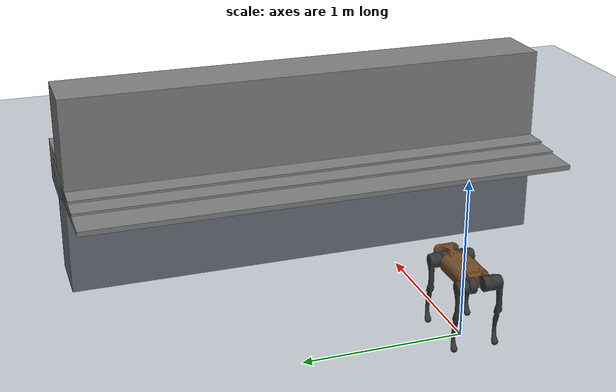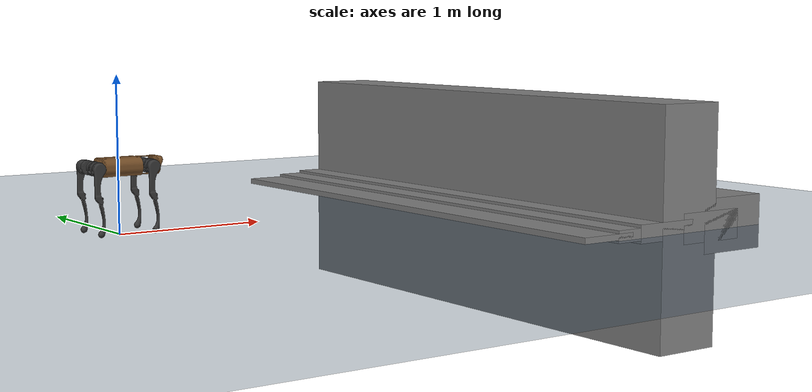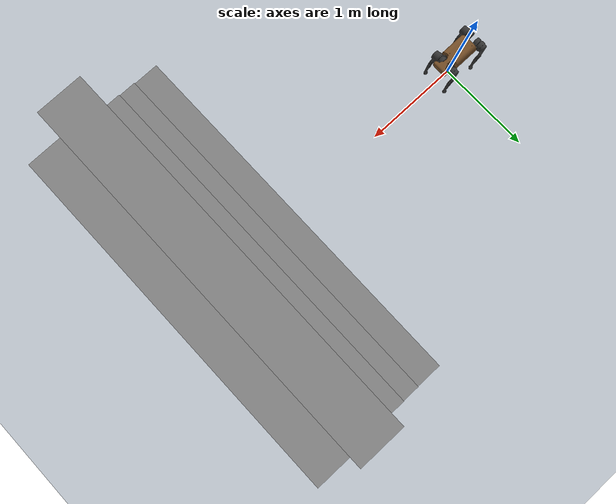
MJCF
<mujoco model="a1 scene">
  <include file="a1.xml"/>

  <statistic center="0 0 0.1" extent="0.8"/>

  <visual>
    <headlight diffuse="0.6 0.6 0.6" ambient="0.3 0.3 0.3" specular="0 0 0"/>
    <rgba haze="0.15 0.25 0.35 1"/>
  </visual>

  <asset>
    <texture type="skybox" builtin="gradient" rgb1="0.3 0.5 0.7" rgb2="0 0 0" width="512" height="3072"/>
    <texture type="2d" name="groundplane" builtin="checker" mark="edge" rgb1="0.2 0.3 0.4" rgb2="0.1 0.2 0.3"
      markrgb="0.8 0.8 0.8" width="300" height="300"/>
    <material name="groundplane" texture="groundplane" texuniform="true" texrepeat="5 5" reflectance="0.2"/>
  </asset>

  <worldbody>
    <light pos="0 0 1.5" dir="0 0 -1" directional="true"/>
    <geom name="floor" size="0 0 0.05" type="plane" material="groundplane"/>

    <geom pos="2.3 0 0.02" type="box"  size="0.2 2 0.02" quat="1.0 0 0 0"/>
    <geom pos="2.6 0 0.02" type="box"  size="0.22 2 0.04" quat="1.0 0 0 0"/>
    <geom pos="2.8 0 0.02" type="box"  size="0.23 2 0.06" quat="1.0 0 0 0"/>
    <geom pos="3 0 0.02" type="box"  size="0.24 2 0.8" quat="1.0 0 0 0"/>
    <geom pos="3.2 0 0.02" type="box"  size="0.25 2 0.10" quat="1.0 0 0 0"/>
    <geom pos="3.4 0 0.02" type="box"  size="0.26 2 0.18" quat="1.0 0 0 0"/>
  </worldbody>
</mujoco>

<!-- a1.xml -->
<mujoco model="a1">
  <compiler angle="radian" meshdir="assets" texturedir="assets" autolimits="true"/>

  <option cone="elliptic" impratio="100"/>

  <default>
    <default class="a1">
      <geom friction="0.6" margin="0.001"/>
      <joint axis="0 1 0" damping="2" armature="0.01" frictionloss="0.2"/>
    <motor ctrlrange="-23.7 23.7"/>
      <default class="abduction">
        <joint axis="1 0 0" damping="1" range="-0.802851 0.802851"/>
        <position ctrlrange="-0.802851 0.802851"/>
      </default>
      <default class="hip">
        <joint range="-1.0472 4.18879"/>
        <position ctrlrange="-1.0472 4.18879"/>
      </default>
      <default class="knee">
        <joint range="-2.69653 -0.916298"/>
        <motor ctrlrange="-45.43 45.43"/>
      </default>
      <default class="visual">
        <geom type="mesh" contype="0" conaffinity="0" group="2" material="dark"/>
      </default>
      <default class="collision">
        <geom group="3" type="capsule"/>
        <default class="hip_left">
          <geom size="0.04 0.04" quat="1 1 0 0" type="cylinder" pos="0 0.055 0"/>
        </default>
        <default class="hip_right">
          <geom size="0.04 0.04" quat="1 1 0 0" type="cylinder" pos="0 -0.055 0"/>
        </default>
        <default class="thigh1">
          <geom size="0.015" fromto="-0.02 0 0 -0.02 0 -0.16"/>
        </default>
        <default class="thigh2">
          <geom size="0.015" fromto="0 0 0 -0.02 0 -0.1"/>
        </default>
        <default class="thigh3">
          <geom size="0.015" fromto="-0.02 0 -0.16 0 0 -0.2"/>
        </default>
        <default class="calf1">
          <geom size="0.01" fromto="0 0 0 0.02 0 -0.13"/>
        </default>
        <default class="calf2">
          <geom size="0.01" fromto="0.02 0 -0.13 0 0 -0.2"/>
        </default>
        <default class="foot">
          <geom type="sphere" size="0.02" pos="0 0 -0.2" priority="1" solimp="0.015 1 0.02" condim="6"
            friction="0.8 0.02 0.01"/>
        </default>
      </default>
    </default>
  </default>

  <asset>
    <material name="dark" specular="0" shininess="0.25" rgba="0.2 0.2 0.2 1"/>
    <texture type="2d" name="trunk_A1" file="trunk_A1.png"/>
    <material name="carbonfibre" texture="trunk_A1" specular="0" shininess="0.25"/>

    <mesh class="a1" file="calf.obj"/>
    <mesh class="a1" file="hip.obj"/>
    <mesh class="a1" file="thigh.obj"/>
    <mesh class="a1" file="thigh_mirror.obj"/>
    <mesh class="a1" file="trunk.obj"/>
  </asset>

  <worldbody>
    <light name="spotlight" mode="targetbodycom" target="trunk" pos="0 -1 2"/>
    <body name="trunk" pos="0 0 0.43" childclass="a1">
      <freejoint/>
      <inertial mass="4.713" pos="0 0.0041 -0.0005"
        fullinertia="0.0158533 0.0377999 0.0456542 -3.66e-05 -6.11e-05 -2.75e-05"/>
      <geom class="visual" mesh="trunk" material="carbonfibre"/>
      <geom class="collision" size="0.125 0.04 0.057" type="box"/>
      <geom class="collision" quat="1 0 1 0" pos="0 -0.04 0" size="0.058 0.125" type="cylinder"/>
      <geom class="collision" quat="1 0 1 0" pos="0 +0.04 0" size="0.058 0.125" type="cylinder"/>
      <geom class="collision" pos="0.25 0 0" size="0.005 0.06 0.05" type="box"/>
      <geom class="collision" pos="0.25 0.06 -0.01" size="0.009 0.035"/>
      <geom class="collision" pos="0.25 -0.06 -0.01" size="0.009 0.035"/>
      <geom class="collision" pos="0.25 0 -0.05" size="0.005 0.06" quat="1 1 0 0"/>
      <geom class="collision" pos="0.255 0 0.0355" size="0.021 0.052" quat="1 1 0 0"/>
      <site name='imu' size='0.01' pos='0.0 0 0.0'/>
      <body name="FL_hip" pos="0.183 0.047 0">
        <inertial mass="0.696" pos="-0.003311 0.000635 3.1e-05" quat="0.494499 0.491507 0.506268 0.507528"
          diaginertia="0.000807752 0.00055293 0.000468983"/>
        <joint class="abduction" name="FL_hip_joint"/>
        <geom class="visual" mesh="hip"/>
        <geom class="hip_left"/>
        <geom class="collision" size="0.04 0.04" pos="0 0.055 0" quat="1 1 0 0" type="cylinder"/>
        <body name="FL_thigh" pos="0 0.08505 0">
          <inertial mass="1.013" pos="-0.003237 -0.022327 -0.027326" quat="0.999125 0.00256393 -0.0409531 0.00806091"
            diaginertia="0.00555739 0.00513936 0.00133944"/>
          <joint class="hip" name="FL_thigh_joint"/>
          <geom class="visual" mesh="thigh"/>
          <geom class="thigh1"/>
          <geom class="thigh2"/>
          <geom class="thigh3"/>
          <body name="FL_calf" pos="0 0 -0.2">
            <inertial mass="0.226" pos="0.00472659 0 -0.131975" quat="0.706886 0.017653 0.017653 0.706886"
              diaginertia="0.00340344 0.00339393 3.54834e-05"/>
            <joint class="knee" name="FL_calf_joint"/>
            <geom class="visual" mesh="calf"/>
            <geom class="calf1"/>
            <geom class="calf2"/>
            <geom class="foot"/>
          </body>
        </body>
      </body>
      <body name="FR_hip" pos="0.183 -0.047 0">
        <inertial mass="0.696" pos="-0.003311 -0.000635 3.1e-05" quat="0.507528 0.506268 0.491507 0.494499"
          diaginertia="0.000807752 0.00055293 0.000468983"/>
        <joint class="abduction" name="FR_hip_joint"/>
        <geom class="visual" mesh="hip" quat="0 1 0 0"/>
        <geom class="hip_right"/>
        <body name="FR_thigh" pos="0 -0.08505 0">
          <inertial mass="1.013" pos="-0.003237 0.022327 -0.027326" quat="0.999125 -0.00256393 -0.0409531 -0.00806091"
            diaginertia="0.00555739 0.00513936 0.00133944"/>
          <joint class="hip" name="FR_thigh_joint"/>
          <geom class="visual" mesh="thigh_mirror"/>
          <geom class="thigh1"/>
          <geom class="thigh2"/>
          <geom class="thigh3"/>
          <body name="FR_calf" pos="0 0 -0.2">
            <inertial mass="0.226" pos="0.00472659 0 -0.131975" quat="0.706886 0.017653 0.017653 0.706886"
              diaginertia="0.00340344 0.00339393 3.54834e-05"/>
            <joint class="knee" name="FR_calf_joint"/>
            <geom class="visual" mesh="calf"/>
            <geom class="calf1"/>
            <geom class="calf2"/>
            <geom class="foot"/>
          </body>
        </body>
      </body>
      <body name="RL_hip" pos="-0.183 0.047 0">
        <inertial mass="0.696" pos="0.003311 0.000635 3.1e-05" quat="0.506268 0.507528 0.494499 0.491507"
          diaginertia="0.000807752 0.00055293 0.000468983"/>
        <joint class="abduction" name="RL_hip_joint"/>
        <geom class="visual" quat="0 0 1 0" mesh="hip"/>
        <geom class="hip_left"/>
        <body name="RL_thigh" pos="0 0.08505 0">
          <inertial mass="1.013" pos="-0.003237 -0.022327 -0.027326" quat="0.999125 0.00256393 -0.0409531 0.00806091"
            diaginertia="0.00555739 0.00513936 0.00133944"/>
          <joint class="hip" name="RL_thigh_joint"/>
          <geom class="visual" mesh="thigh"/>
          <geom class="thigh1"/>
          <geom class="thigh2"/>
          <geom class="thigh3"/>
          <body name="RL_calf" pos="0 0 -0.2">
            <inertial mass="0.226" pos="0.00472659 0 -0.131975" quat="0.706886 0.017653 0.017653 0.706886"
              diaginertia="0.00340344 0.00339393 3.54834e-05"/>
            <joint class="knee" name="RL_calf_joint"/>
            <geom class="visual" mesh="calf"/>
            <geom class="calf1"/>
            <geom class="calf2"/>
            <geom class="foot"/>
          </body>
        </body>
      </body>
            <body name="RR_hip" pos="-0.183 -0.047 0">
        <inertial mass="0.696" pos="0.003311 -0.000635 3.1e-05" quat="0.491507 0.494499 0.507528 0.506268"
          diaginertia="0.000807752 0.00055293 0.000468983"/>
        <joint class="abduction" name="RR_hip_joint"/>
        <geom class="visual" quat="0 0 0 -1" mesh="hip"/>
        <geom class="hip_right"/>
        <body name="RR_thigh" pos="0 -0.08505 0">
          <inertial mass="1.013" pos="-0.003237 0.022327 -0.027326" quat="0.999125 -0.00256393 -0.0409531 -0.00806091"
            diaginertia="0.00555739 0.00513936 0.00133944"/>
          <joint class="hip" name="RR_thigh_joint"/>
          <geom class="visual" mesh="thigh_mirror"/>
          <geom class="thigh1"/>
          <geom class="thigh2"/>
          <geom class="thigh3"/>
          <body name="RR_calf" pos="0 0 -0.2">
            <inertial mass="0.226" pos="0.00472659 0 -0.131975" quat="0.706886 0.017653 0.017653 0.706886"
              diaginertia="0.00340344 0.00339393 3.54834e-05"/>
            <joint class="knee" name="RR_calf_joint"/>
            <geom class="visual" mesh="calf"/>
            <geom class="calf1"/>
            <geom class="calf2"/>
            <geom class="foot"/>
          </body>
        </body>
      </body>
    </body>

  </worldbody>

  <actuator>
    <motor name="FL_hip" joint="FL_hip_joint" gear="1" ctrllimited="true" ctrlrange="-12 12"/>
    <motor name="FL_thigh" joint="FL_thigh_joint" gear="1" ctrllimited="true" ctrlrange="-12 12"/>
    <motor name="FL_calf" joint="FL_calf_joint" gear="1" ctrllimited="true" ctrlrange="-12 12"/>
    <motor name="FR_hip" joint="FR_hip_joint" gear="1" ctrllimited="true" ctrlrange="-12 12"/>
    <motor name="FR_thigh" joint="FR_thigh_joint" gear="1" ctrllimited="true" ctrlrange="-12 12"/>
    <motor name="FR_calf" joint="FR_calf_joint" gear="1" ctrllimited="true" ctrlrange="-12 12"/>
    <motor name="RL_hip" joint="RL_hip_joint" gear="1" ctrllimited="true" ctrlrange="-12 12"/>
    <motor name="RL_thigh" joint="RL_thigh_joint" gear="1" ctrllimited="true" ctrlrange="-12 12"/>
    <motor name="RL_calf" joint="RL_calf_joint" gear="1" ctrllimited="true" ctrlrange="-12 12"/>
    <motor name="RR_hip" joint="RR_hip_joint" gear="1" ctrllimited="true" ctrlrange="-12 12"/>
    <motor name="RR_thigh" joint="RR_thigh_joint" gear="1" ctrllimited="true" ctrlrange="-12 12"/>
    <motor name="RR_calf" joint="RR_calf_joint" gear="1" ctrllimited="true" ctrlrange="-12 12"/>
  </actuator>
  <sensor>
    <jointpos name="FL_hip_pos" joint="FL_hip_joint" />
    <jointpos name="FL_thigh_pos" joint="FL_thigh_joint" />
    <jointpos name="FL_calf_pos" joint="FL_calf_joint" />
    <jointpos name="FR_hip_pos" joint="FR_hip_joint" />
    <jointpos name="FR_thigh_pos" joint="FR_thigh_joint" />
    <jointpos name="FR_calf_pos" joint="FR_calf_joint" />
    <jointpos name="RL_hip_pos" joint="RL_hip_joint" />
    <jointpos name="RL_thigh_pos" joint="RL_thigh_joint" />
    <jointpos name="RL_calf_pos" joint="RL_calf_joint" />
    <jointpos name="RR_hip_pos" joint="RR_hip_joint" />
    <jointpos name="RR_thigh_pos" joint="RR_thigh_joint" />
    <jointpos name="RR_calf_pos" joint="RR_calf_joint" />

    <jointvel name="FL_hip_vel" joint="FL_hip_joint" />
    <jointvel name="FL_thigh_vel" joint="FL_thigh_joint" />
    <jointvel name="FL_calf_vel" joint="FL_calf_joint" />
    <jointvel name="FR_hip_vel" joint="FR_hip_joint" />
    <jointvel name="FR_thigh_vel" joint="FR_thigh_joint" />
    <jointvel name="FR_calf_vel" joint="FR_calf_joint" />
    <jointvel name="RL_hip_vel" joint="RL_hip_joint" />
    <jointvel name="RL_thigh_vel" joint="RL_thigh_joint" />
    <jointvel name="RL_calf_vel" joint="RL_calf_joint" />
    <jointvel name="RR_hip_vel" joint="RR_hip_joint" />
    <jointvel name="RR_thigh_vel" joint="RR_thigh_joint" />
    <jointvel name="RR_calf_vel" joint="RR_calf_joint" />

    <jointactuatorfrc name="FL_hip_torque" joint="FL_hip_joint" noise="0.01" />
    <jointactuatorfrc name="FL_thigh_torque" joint="FL_thigh_joint" noise="0.01" />
    <jointactuatorfrc name="FL_calf_torque" joint="FL_calf_joint" noise="0.01" />
    <jointactuatorfrc name="FR_hip_torque" joint="FR_hip_joint" noise="0.01" />
    <jointactuatorfrc name="FR_thigh_torque" joint="FR_thigh_joint" noise="0.01" />
    <jointactuatorfrc name="FR_calf_torque" joint="FR_calf_joint" noise="0.01" />
    <jointactuatorfrc name="RL_hip_torque" joint="RL_hip_joint" noise="0.01" />
    <jointactuatorfrc name="RL_thigh_torque" joint="RL_thigh_joint" noise="0.01" />
    <jointactuatorfrc name="RL_calf_torque" joint="RL_calf_joint" noise="0.01" />
    <jointactuatorfrc name="RR_hip_torque" joint="RR_hip_joint" noise="0.01" />
    <jointactuatorfrc name="RR_thigh_torque" joint="RR_thigh_joint" noise="0.01" />
    <jointactuatorfrc name="RR_calf_torque" joint="RR_calf_joint" noise="0.01" />

    <framequat     name='orientation' objtype='site' noise='0.001' objname='imu'/>
    <framepos      name='position' objtype='site' noise='0.001' objname='imu'/>
    <framelinvel    name="base_lin_vel" objtype="site" objname="imu" />
    <gyro          name='angular-velocity'    site='imu' noise='0.005' cutoff='34.9'/>
    <velocimeter   name='linear-velocity'     site='imu' noise='0.001' cutoff='30'/>
    <accelerometer name='linear-acceleration' site='imu' noise='0.005' cutoff='157'/>
    <magnetometer  name='magnetometer'        site='imu'/>

  </sensor>

  <keyframe>
    <key name="home" qpos="0 0 0.27 1 0 0 0 0 0.9 -1.8 0 0.9 -1.8 0 0.9 -1.8 0 0.9 -1.8"
      ctrl="0 0.9 -1.8 0 0.9 -1.8 0 0.9 -1.8 0 0.9 -1.8"/>
  </keyframe>
</mujoco>
